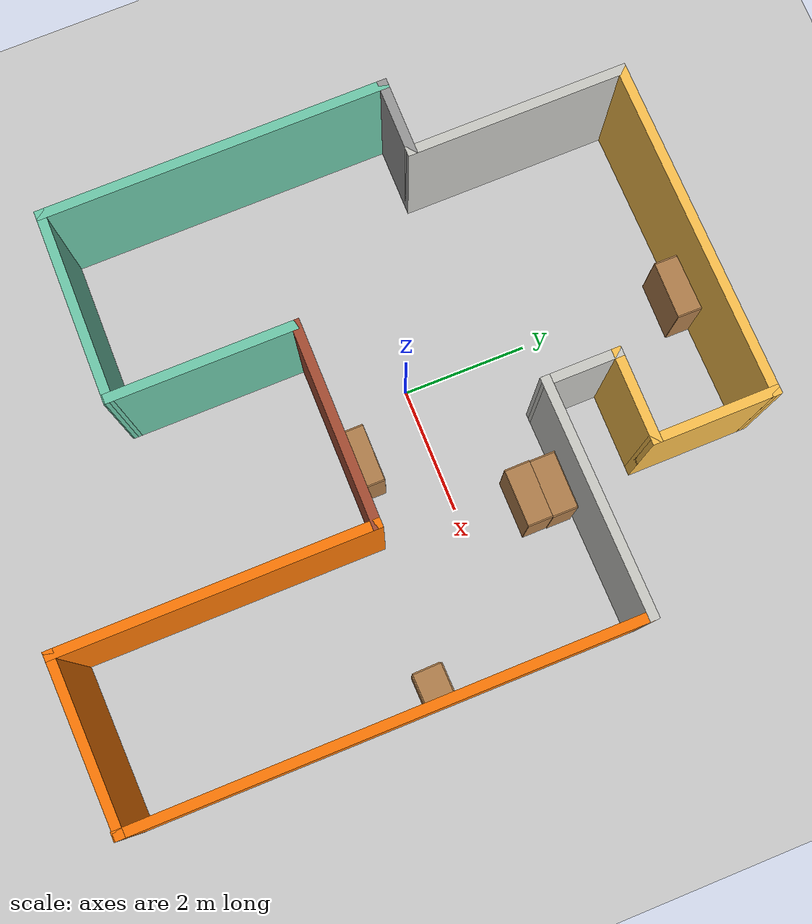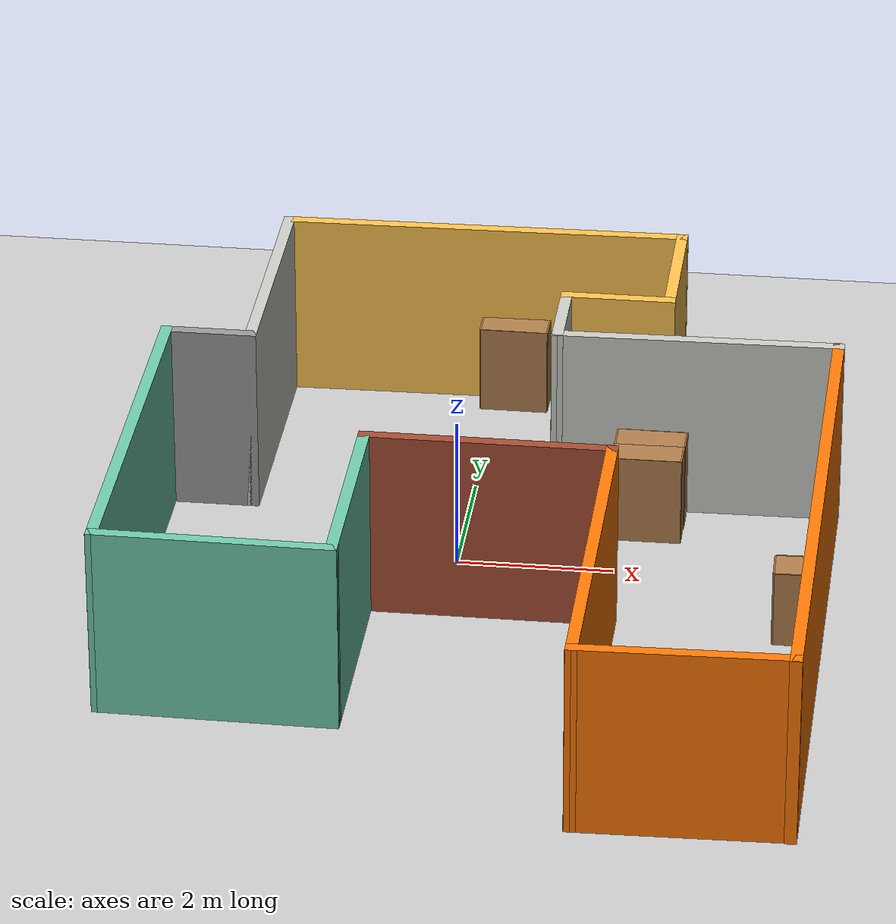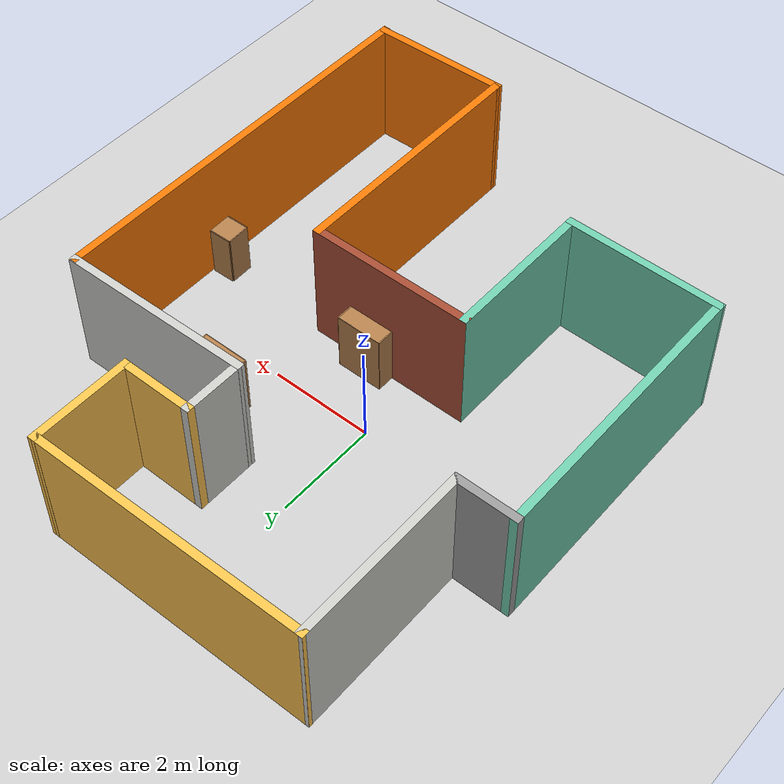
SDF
<sdf version="1.6">
 <world name="default">
  <model name="ground_plane">
   <static>1</static>
   <link name="link">
    <collision name="collision">
     <geometry><plane><normal>0 0 1</normal><size>100 100</size></plane></geometry>
     <surface>
      <contact><collide_bitmask>65535</collide_bitmask></contact>
      <friction><ode><mu>100</mu><mu2>50</mu2></ode></friction>
     </surface>
    </collision>
    <visual name="visual">
     <cast_shadows>0</cast_shadows>
     <geometry><plane><normal>0 0 1</normal><size>100 100</size></plane></geometry>
     <material>
      <script><uri>file://media/materials/scripts/gazebo.material</uri><name>Gazebo/Grey</name></script>
     </material>
    </visual>
   </link>
  </model>
  <model name="easy">
   <pose>0.391271 -0.746153 0 0 -0 0</pose>
   <link name="Wall_1">
    <collision name="Wall_1_Collision">
     <geometry><box><size>5.5 0.15 2.5</size></box></geometry>
     <pose>0 0 1.25 0 -0 0</pose>
    </collision>
    <visual name="Wall_1_Visual">
     <pose>0 0 1.25 0 -0 0</pose>
     <geometry><box><size>5.5 0.15 2.5</size></box></geometry>
     <material>
      <script><uri>file://media/materials/scripts/gazebo.material</uri><name>Gazebo/Grey</name></script>
      <ambient>0.435294 0.796078 0.67451 1</ambient>
     </material>
     <meta><layer>0</layer></meta>
    </visual>
    <pose>-4.31567 -0.707217 0 0 0 -1.5708</pose>
   </link>
   <link name="Wall_10">
    <collision name="Wall_10_Collision">
     <geometry><box><size>3.76202 0.15 2.5</size></box></geometry>
     <pose>0 0 1.25 0 -0 0</pose>
    </collision>
    <visual name="Wall_10_Visual">
     <pose>0 0 1.25 0 -0 0</pose>
     <geometry><box><size>3.76202 0.15 2.5</size></box></geometry>
     <material>
      <script><uri>file://media/materials/scripts/gazebo.material</uri><name>Gazebo/CeilingTiled</name></script>
      <ambient>1 1 1 1</ambient>
     </material>
     <meta><layer>0</layer></meta>
    </visual>
    <pose>2.50896 2.48114 0 0 0 -3.12451</pose>
   </link>
   <link name="Wall_11">
    <collision name="Wall_11_Collision">
     <geometry><box><size>1.25 0.15 2.5</size></box></geometry>
     <pose>0 0 1.25 0 -0 0</pose>
    </collision>
    <visual name="Wall_11_Visual">
     <pose>0 0 1.25 0 -0 0</pose>
     <geometry><box><size>1.25 0.15 2.5</size></box></geometry>
     <material>
      <script><uri>file://media/materials/scripts/gazebo.material</uri><name>Gazebo/CeilingTiled</name></script>
      <ambient>1 1 1 1</ambient>
     </material>
     <meta><layer>0</layer></meta>
    </visual>
    <pose>0.703214 3.00029 0 0 -0 1.5708</pose>
   </link>
   <link name="Wall_12">
    <collision name="Wall_12_Collision">
     <geometry><box><size>1.5 0.15 2.5</size></box></geometry>
     <pose>0 0 1.25 0 -0 0</pose>
    </collision>
    <visual name="Wall_12_Visual">
     <pose>0 0 1.25 0 -0 0</pose>
     <geometry><box><size>1.5 0.15 2.5</size></box></geometry>
     <material>
      <script><uri>file://media/materials/scripts/gazebo.material</uri><name>Gazebo/Grey</name></script>
      <ambient>1 0.764706 0.305882 1</ambient>
     </material>
     <meta><layer>0</layer></meta>
    </visual>
    <pose>1.37821 3.55029 0 0 -0 0</pose>
   </link>
   <link name="Wall_13">
    <collision name="Wall_13_Collision">
     <geometry><box><size>2 0.15 2.5</size></box></geometry>
     <pose>0 0 1.25 0 -0 0</pose>
    </collision>
    <visual name="Wall_13_Visual">
     <pose>0 0 1.25 0 -0 0</pose>
     <geometry><box><size>2 0.15 2.5</size></box></geometry>
     <material>
      <script><uri>file://media/materials/scripts/gazebo.material</uri><name>Gazebo/Grey</name></script>
      <ambient>1 0.764706 0.305882 1</ambient>
     </material>
     <meta><layer>0</layer></meta>
    </visual>
    <pose>2.05321 4.47529 0 0 -0 1.5708</pose>
   </link>
   <link name="Wall_19">
    <collision name="Wall_19_Collision">
     <geometry><box><size>1.25 0.15 2.5</size></box></geometry>
     <pose>0 0 1.25 0 -0 0</pose>
    </collision>
    <visual name="Wall_19_Visual">
     <pose>0 0 1.25 0 -0 0</pose>
     <geometry><box><size>1.25 0.15 2.5</size></box></geometry>
     <material>
      <script><uri>file://media/materials/scripts/gazebo.material</uri><name>Gazebo/Grey</name></script>
      <ambient>1 1 1 1</ambient>
     </material>
     <meta><layer>0</layer></meta>
    </visual>
    <pose>-3.76567 1.96778 0 0 -0 0</pose>
   </link>
   <link name="Wall_2">
    <collision name="Wall_2_Collision">
     <geometry><box><size>3.06888 0.15 2.5</size></box></geometry>
     <pose>0 0 1.25 0 -0 0</pose>
    </collision>
    <visual name="Wall_2_Visual">
     <pose>0 0 1.25 0 -0 0</pose>
     <geometry><box><size>3.06888 0.15 2.5</size></box></geometry>
     <material>
      <script><uri>file://media/materials/scripts/gazebo.material</uri><name>Gazebo/Grey</name></script>
      <ambient>0.435294 0.796078 0.67451 1</ambient>
     </material>
     <meta><layer>0</layer></meta>
    </visual>
    <pose>-2.85623 -3.39971 0 0 0 -0.011984</pose>
   </link>
   <link name="Wall_20">
    <collision name="Wall_20_Collision">
     <geometry><box><size>3.5 0.15 2.5</size></box></geometry>
     <pose>0 0 1.25 0 -0 0</pose>
    </collision>
    <visual name="Wall_20_Visual">
     <pose>0 0 1.25 0 -0 0</pose>
     <geometry><box><size>3.5 0.15 2.5</size></box></geometry>
     <material>
      <script><uri>file://media/materials/scripts/gazebo.material</uri><name>Gazebo/CeilingTiled</name></script>
      <ambient>1 1 1 1</ambient>
     </material>
     <meta><layer>0</layer></meta>
    </visual>
    <pose>-3.21567 3.64278 0 0 -0 1.5708</pose>
   </link>
   <link name="Wall_21">
    <collision name="Wall_21_Collision">
     <geometry><box><size>5.41953 0.15 2.5</size></box></geometry>
     <pose>0 0 1.25 0 -0 0</pose>
    </collision>
    <visual name="Wall_21_Visual">
     <pose>0 0 1.25 0 -0 0</pose>
     <geometry><box><size>5.41953 0.15 2.5</size></box></geometry>
     <material>
      <script><uri>file://media/materials/scripts/gazebo.material</uri><name>Gazebo/Grey</name></script>
      <ambient>1 0.764706 0.305882 1</ambient>
     </material>
     <meta><layer>0</layer></meta>
    </visual>
    <pose>-0.581227 5.35904 0 0 -0 0.015659</pose>
   </link>
   <link name="Wall_3">
    <collision name="Wall_3_Collision">
     <geometry><box><size>3 0.15 2.5</size></box></geometry>
     <pose>0 0 1.25 0 -0 0</pose>
    </collision>
    <visual name="Wall_3_Visual">
     <pose>0 0 1.25 0 -0 0</pose>
     <geometry><box><size>3 0.15 2.5</size></box></geometry>
     <material>
      <script><uri>file://media/materials/scripts/gazebo.material</uri><name>Gazebo/Grey</name></script>
      <ambient>0.435294 0.796078 0.67451 1</ambient>
     </material>
     <meta><layer>0</layer></meta>
    </visual>
    <pose>-1.39679 -1.97471 0 0 -0 1.5708</pose>
   </link>
   <link name="Wall_6">
    <collision name="Wall_6_Collision">
     <geometry><box><size>3.25 0.15 2.5</size></box></geometry>
     <pose>0 0 1.25 0 -0 0</pose>
    </collision>
    <visual name="Wall_6_Visual">
     <pose>0 0 1.25 0 -0 0</pose>
     <geometry><box><size>3.25 0.15 2.5</size></box></geometry>
     <material>
      <script><uri>file://media/materials/scripts/gazebo.material</uri><name>Gazebo/Bricks</name></script>
      <ambient>1 1 1 1</ambient>
     </material>
     <meta><layer>0</layer></meta>
    </visual>
    <pose>0.153214 -0.549707 0 0 -0 0</pose>
   </link>
   <link name="Wall_7">
    <collision name="Wall_7_Collision">
     <geometry><box><size>5 0.15 2.5</size></box></geometry>
     <pose>0 0 1.25 0 -0 0</pose>
    </collision>
    <visual name="Wall_7_Visual">
     <pose>0 0 1.25 0 -0 0</pose>
     <geometry><box><size>5 0.15 2.5</size></box></geometry>
     <material>
      <script><uri>file://media/materials/scripts/gazebo.material</uri><name>Gazebo/Grey</name></script>
      <ambient>0.996078 0.47451 0.0196078 1</ambient>
     </material>
     <meta><layer>0</layer></meta>
    </visual>
    <pose>1.70321 -2.97471 0 0 0 -1.5708</pose>
   </link>
   <link name="Wall_8">
    <collision name="Wall_8_Collision">
     <geometry><box><size>2.76222 0.15 2.5</size></box></geometry>
     <pose>0 0 1.25 0 -0 0</pose>
    </collision>
    <visual name="Wall_8_Visual">
     <pose>0 0 1.25 0 -0 0</pose>
     <geometry><box><size>2.76222 0.15 2.5</size></box></geometry>
     <material>
      <script><uri>file://media/materials/scripts/gazebo.material</uri><name>Gazebo/Grey</name></script>
      <ambient>0.996078 0.47451 0.0196078 1</ambient>
     </material>
     <meta><layer>0</layer></meta>
    </visual>
    <pose>3.00896 -5.36886 0 0 -0 0.023623</pose>
   </link>
   <link name="Wall_9">
    <collision name="Wall_9_Collision">
     <geometry><box><size>8 0.15 2.5</size></box></geometry>
     <pose>0 0 1.25 0 -0 0</pose>
    </collision>
    <visual name="Wall_9_Visual">
     <pose>0 0 1.25 0 -0 0</pose>
     <geometry><box><size>8 0.15 2.5</size></box></geometry>
     <material>
      <script><uri>file://media/materials/scripts/gazebo.material</uri><name>Gazebo/Grey</name></script>
      <ambient>0.996078 0.47451 0.0196078 1</ambient>
     </material>
     <meta><layer>0</layer></meta>
    </visual>
    <pose>4.31471 -1.4283 0 0 -0 1.5708</pose>
   </link>
   <static>1</static>
  </model>
  <model name="bookshelf">
   <static>1</static>
   <link name="link">
    <inertial><mass>1</mass></inertial>
    <collision name="back">
     <pose>0 0.005 0.6 0 -0 0</pose>
     <geometry><box><size>0.9 0.01 1.2</size></box></geometry>
    </collision>
    <visual name="visual1">
     <pose>0 0.005 0.6 0 -0 0</pose>
     <geometry><box><size>0.9 0.01 1.2</size></box></geometry>
     <material>
      <script><uri>file://media/materials/scripts/gazebo.material</uri><name>Gazebo/Wood</name></script>
     </material>
    </visual>
    <collision name="left_side">
     <pose>0.45 -0.195 0.6 0 -0 0</pose>
     <geometry><box><size>0.02 0.4 1.2</size></box></geometry>
    </collision>
    <visual name="visual2">
     <pose>0.45 -0.195 0.6 0 -0 0</pose>
     <geometry><box><size>0.02 0.4 1.2</size></box></geometry>
     <material>
      <script><uri>file://media/materials/scripts/gazebo.material</uri><name>Gazebo/Wood</name></script>
     </material>
    </visual>
    <collision name="right_side">
     <pose>-0.45 -0.195 0.6 0 -0 0</pose>
     <geometry><box><size>0.02 0.4 1.2</size></box></geometry>
    </collision>
    <visual name="visual3">
     <pose>-0.45 -0.195 0.6 0 -0 0</pose>
     <geometry><box><size>0.02 0.4 1.2</size></box></geometry>
     <material>
      <script><uri>file://media/materials/scripts/gazebo.material</uri><name>Gazebo/Wood</name></script>
     </material>
    </visual>
    <collision name="bottom">
     <pose>0 -0.195 0.03 0 -0 0</pose>
     <geometry><box><size>0.88 0.4 0.06</size></box></geometry>
    </collision>
    <visual name="visual4">
     <pose>0 -0.195 0.03 0 -0 0</pose>
     <geometry><box><size>0.88 0.4 0.06</size></box></geometry>
     <material>
      <script><uri>file://media/materials/scripts/gazebo.material</uri><name>Gazebo/Wood</name></script>
     </material>
    </visual>
    <collision name="top">
     <pose>0 -0.195 1.19 0 -0 0</pose>
     <geometry><box><size>0.88 0.4 0.02</size></box></geometry>
    </collision>
    <visual name="visual5">
     <pose>0 -0.195 1.19 0 -0 0</pose>
     <geometry><box><size>0.88 0.4 0.02</size></box></geometry>
     <material>
      <script><uri>file://media/materials/scripts/gazebo.material</uri><name>Gazebo/Wood</name></script>
     </material>
    </visual>
    <collision name="low_shelf">
     <pose>0 -0.195 0.43 0 -0 0</pose>
     <geometry><box><size>0.88 0.4 0.02</size></box></geometry>
    </collision>
    <visual name="visual6">
     <pose>0 -0.195 0.43 0 -0 0</pose>
     <geometry><box><size>0.88 0.4 0.02</size></box></geometry>
     <material>
      <script><uri>file://media/materials/scripts/gazebo.material</uri><name>Gazebo/Wood</name></script>
     </material>
    </visual>
    <collision name="high_shelf">
     <pose>0 -0.195 0.8 0 -0 0</pose>
     <geometry><box><size>0.88 0.4 0.02</size></box></geometry>
    </collision>
    <visual name="visual7">
     <pose>0 -0.195 0.8 0 -0 0</pose>
     <geometry><box><size>0.88 0.4 0.02</size></box></geometry>
     <material>
      <script><uri>file://media/materials/scripts/gazebo.material</uri><name>Gazebo/Wood</name></script>
     </material>
    </visual>
   </link>
   <pose>0.245958 4.17344 0 0 -0 3.13529</pose>
  </model>
  <model name="bookshelf_0">
   <static>1</static>
   <link name="link">
    <inertial><mass>1</mass></inertial>
    <collision name="back">
     <pose>0 0.005 0.6 0 -0 0</pose>
     <geometry><box><size>0.9 0.01 1.2</size></box></geometry>
    </collision>
    <visual name="visual1">
     <pose>0 0.005 0.6 0 -0 0</pose>
     <geometry><box><size>0.9 0.01 1.2</size></box></geometry>
     <material>
      <script><uri>file://media/materials/scripts/gazebo.material</uri><name>Gazebo/Wood</name></script>
     </material>
    </visual>
    <collision name="left_side">
     <pose>0.45 -0.195 0.6 0 -0 0</pose>
     <geometry><box><size>0.02 0.4 1.2</size></box></geometry>
    </collision>
    <visual name="visual2">
     <pose>0.45 -0.195 0.6 0 -0 0</pose>
     <geometry><box><size>0.02 0.4 1.2</size></box></geometry>
     <material>
      <script><uri>file://media/materials/scripts/gazebo.material</uri><name>Gazebo/Wood</name></script>
     </material>
    </visual>
    <collision name="right_side">
     <pose>-0.45 -0.195 0.6 0 -0 0</pose>
     <geometry><box><size>0.02 0.4 1.2</size></box></geometry>
    </collision>
    <visual name="visual3">
     <pose>-0.45 -0.195 0.6 0 -0 0</pose>
     <geometry><box><size>0.02 0.4 1.2</size></box></geometry>
     <material>
      <script><uri>file://media/materials/scripts/gazebo.material</uri><name>Gazebo/Wood</name></script>
     </material>
    </visual>
    <collision name="bottom">
     <pose>0 -0.195 0.03 0 -0 0</pose>
     <geometry><box><size>0.88 0.4 0.06</size></box></geometry>
    </collision>
    <visual name="visual4">
     <pose>0 -0.195 0.03 0 -0 0</pose>
     <geometry><box><size>0.88 0.4 0.06</size></box></geometry>
     <material>
      <script><uri>file://media/materials/scripts/gazebo.material</uri><name>Gazebo/Wood</name></script>
     </material>
    </visual>
    <collision name="top">
     <pose>0 -0.195 1.19 0 -0 0</pose>
     <geometry><box><size>0.88 0.4 0.02</size></box></geometry>
    </collision>
    <visual name="visual5">
     <pose>0 -0.195 1.19 0 -0 0</pose>
     <geometry><box><size>0.88 0.4 0.02</size></box></geometry>
     <material>
      <script><uri>file://media/materials/scripts/gazebo.material</uri><name>Gazebo/Wood</name></script>
     </material>
    </visual>
    <collision name="low_shelf">
     <pose>0 -0.195 0.43 0 -0 0</pose>
     <geometry><box><size>0.88 0.4 0.02</size></box></geometry>
    </collision>
    <visual name="visual6">
     <pose>0 -0.195 0.43 0 -0 0</pose>
     <geometry><box><size>0.88 0.4 0.02</size></box></geometry>
     <material>
      <script><uri>file://media/materials/scripts/gazebo.material</uri><name>Gazebo/Wood</name></script>
     </material>
    </visual>
    <collision name="high_shelf">
     <pose>0 -0.195 0.8 0 -0 0</pose>
     <geometry><box><size>0.88 0.4 0.02</size></box></geometry>
    </collision>
    <visual name="visual7">
     <pose>0 -0.195 0.8 0 -0 0</pose>
     <geometry><box><size>0.88 0.4 0.02</size></box></geometry>
     <material>
      <script><uri>file://media/materials/scripts/gazebo.material</uri><name>Gazebo/Wood</name></script>
     </material>
    </visual>
   </link>
   <pose>0.898312 -0.891576 0 0 -0 0</pose>
  </model>
  <model name="bookshelf_1">
   <static>1</static>
   <link name="link">
    <inertial><mass>1</mass></inertial>
    <collision name="back">
     <pose>0 0.005 0.6 0 -0 0</pose>
     <geometry><box><size>0.9 0.01 1.2</size></box></geometry>
    </collision>
    <visual name="visual1">
     <pose>0 0.005 0.6 0 -0 0</pose>
     <geometry><box><size>0.9 0.01 1.2</size></box></geometry>
     <material>
      <script><uri>file://media/materials/scripts/gazebo.material</uri><name>Gazebo/Wood</name></script>
     </material>
    </visual>
    <collision name="left_side">
     <pose>0.45 -0.195 0.6 0 -0 0</pose>
     <geometry><box><size>0.02 0.4 1.2</size></box></geometry>
    </collision>
    <visual name="visual2">
     <pose>0.45 -0.195 0.6 0 -0 0</pose>
     <geometry><box><size>0.02 0.4 1.2</size></box></geometry>
     <material>
      <script><uri>file://media/materials/scripts/gazebo.material</uri><name>Gazebo/Wood</name></script>
     </material>
    </visual>
    <collision name="right_side">
     <pose>-0.45 -0.195 0.6 0 -0 0</pose>
     <geometry><box><size>0.02 0.4 1.2</size></box></geometry>
    </collision>
    <visual name="visual3">
     <pose>-0.45 -0.195 0.6 0 -0 0</pose>
     <geometry><box><size>0.02 0.4 1.2</size></box></geometry>
     <material>
      <script><uri>file://media/materials/scripts/gazebo.material</uri><name>Gazebo/Wood</name></script>
     </material>
    </visual>
    <collision name="bottom">
     <pose>0 -0.195 0.03 0 -0 0</pose>
     <geometry><box><size>0.88 0.4 0.06</size></box></geometry>
    </collision>
    <visual name="visual4">
     <pose>0 -0.195 0.03 0 -0 0</pose>
     <geometry><box><size>0.88 0.4 0.06</size></box></geometry>
     <material>
      <script><uri>file://media/materials/scripts/gazebo.material</uri><name>Gazebo/Wood</name></script>
     </material>
    </visual>
    <collision name="top">
     <pose>0 -0.195 1.19 0 -0 0</pose>
     <geometry><box><size>0.88 0.4 0.02</size></box></geometry>
    </collision>
    <visual name="visual5">
     <pose>0 -0.195 1.19 0 -0 0</pose>
     <geometry><box><size>0.88 0.4 0.02</size></box></geometry>
     <material>
      <script><uri>file://media/materials/scripts/gazebo.material</uri><name>Gazebo/Wood</name></script>
     </material>
    </visual>
    <collision name="low_shelf">
     <pose>0 -0.195 0.43 0 -0 0</pose>
     <geometry><box><size>0.88 0.4 0.02</size></box></geometry>
    </collision>
    <visual name="visual6">
     <pose>0 -0.195 0.43 0 -0 0</pose>
     <geometry><box><size>0.88 0.4 0.02</size></box></geometry>
     <material>
      <script><uri>file://media/materials/scripts/gazebo.material</uri><name>Gazebo/Wood</name></script>
     </material>
    </visual>
    <collision name="high_shelf">
     <pose>0 -0.195 0.8 0 -0 0</pose>
     <geometry><box><size>0.88 0.4 0.02</size></box></geometry>
    </collision>
    <visual name="visual7">
     <pose>0 -0.195 0.8 0 -0 0</pose>
     <geometry><box><size>0.88 0.4 0.02</size></box></geometry>
     <material>
      <script><uri>file://media/materials/scripts/gazebo.material</uri><name>Gazebo/Wood</name></script>
     </material>
    </visual>
   </link>
   <pose>2.34946 1.60551 0 0 -0 0</pose>
  </model>
  <model name="bookshelf_2">
   <static>1</static>
   <link name="link">
    <inertial><mass>1</mass></inertial>
    <collision name="back">
     <pose>0 0.005 0.6 0 -0 0</pose>
     <geometry><box><size>0.9 0.01 1.2</size></box></geometry>
    </collision>
    <visual name="visual1">
     <pose>0 0.005 0.6 0 -0 0</pose>
     <geometry><box><size>0.9 0.01 1.2</size></box></geometry>
     <material>
      <script><uri>file://media/materials/scripts/gazebo.material</uri><name>Gazebo/Wood</name></script>
     </material>
    </visual>
    <collision name="left_side">
     <pose>0.45 -0.195 0.6 0 -0 0</pose>
     <geometry><box><size>0.02 0.4 1.2</size></box></geometry>
    </collision>
    <visual name="visual2">
     <pose>0.45 -0.195 0.6 0 -0 0</pose>
     <geometry><box><size>0.02 0.4 1.2</size></box></geometry>
     <material>
      <script><uri>file://media/materials/scripts/gazebo.material</uri><name>Gazebo/Wood</name></script>
     </material>
    </visual>
    <collision name="right_side">
     <pose>-0.45 -0.195 0.6 0 -0 0</pose>
     <geometry><box><size>0.02 0.4 1.2</size></box></geometry>
    </collision>
    <visual name="visual3">
     <pose>-0.45 -0.195 0.6 0 -0 0</pose>
     <geometry><box><size>0.02 0.4 1.2</size></box></geometry>
     <material>
      <script><uri>file://media/materials/scripts/gazebo.material</uri><name>Gazebo/Wood</name></script>
     </material>
    </visual>
    <collision name="bottom">
     <pose>0 -0.195 0.03 0 -0 0</pose>
     <geometry><box><size>0.88 0.4 0.06</size></box></geometry>
    </collision>
    <visual name="visual4">
     <pose>0 -0.195 0.03 0 -0 0</pose>
     <geometry><box><size>0.88 0.4 0.06</size></box></geometry>
     <material>
      <script><uri>file://media/materials/scripts/gazebo.material</uri><name>Gazebo/Wood</name></script>
     </material>
    </visual>
    <collision name="top">
     <pose>0 -0.195 1.19 0 -0 0</pose>
     <geometry><box><size>0.88 0.4 0.02</size></box></geometry>
    </collision>
    <visual name="visual5">
     <pose>0 -0.195 1.19 0 -0 0</pose>
     <geometry><box><size>0.88 0.4 0.02</size></box></geometry>
     <material>
      <script><uri>file://media/materials/scripts/gazebo.material</uri><name>Gazebo/Wood</name></script>
     </material>
    </visual>
    <collision name="low_shelf">
     <pose>0 -0.195 0.43 0 -0 0</pose>
     <geometry><box><size>0.88 0.4 0.02</size></box></geometry>
    </collision>
    <visual name="visual6">
     <pose>0 -0.195 0.43 0 -0 0</pose>
     <geometry><box><size>0.88 0.4 0.02</size></box></geometry>
     <material>
      <script><uri>file://media/materials/scripts/gazebo.material</uri><name>Gazebo/Wood</name></script>
     </material>
    </visual>
    <collision name="high_shelf">
     <pose>0 -0.195 0.8 0 -0 0</pose>
     <geometry><box><size>0.88 0.4 0.02</size></box></geometry>
    </collision>
    <visual name="visual7">
     <pose>0 -0.195 0.8 0 -0 0</pose>
     <geometry><box><size>0.88 0.4 0.02</size></box></geometry>
     <material>
      <script><uri>file://media/materials/scripts/gazebo.material</uri><name>Gazebo/Wood</name></script>
     </material>
    </visual>
   </link>
   <pose>2.3416 0.820155 0 0 0 -3.13682</pose>
  </model>
  <model name="cabinet">
   <static>1</static>
   <link name="cabinet_bottom_plate">
    <inertial>
     <pose>0 0 -1 0 -0 0</pose>
     <inertia><ixx>2.05</ixx><ixy>0</ixy><ixz>0</ixz><iyy>2.05</iyy><iyz>0</iyz><izz>2.05</izz></inertia>
     <mass>25</mass>
    </inertial>
    <collision name="cabinet_bottom_plate_geom">
     <pose>0 0 0.01 0 -0 0</pose>
     <geometry><box><size>0.45 0.45 0.02</size></box></geometry>
    </collision>
    <visual name="cabinet_bottom_plate_geom_visual">
     <pose>0 0 0.01 0 -0 0</pose>
     <geometry><box><size>0.45 0.45 0.02</size></box></geometry>
     <material>
      <script><uri>file://media/materials/scripts/gazebo.material</uri><name>Gazebo/Wood</name></script>
     </material>
    </visual>
    <collision name="cabinet_bottom_plate_geom_cabinet_back_plate">
     <pose>0.235 0 0.51 0 -0 0</pose>
     <geometry><box><size>0.02 0.45 1.02</size></box></geometry>
    </collision>
    <visual name="cabinet_bottom_plate_geom_cabinet_back_plate_visual">
     <pose>0.235 0 0.51 0 -0 0</pose>
     <geometry><box><size>0.02 0.45 1.02</size></box></geometry>
     <material>
      <script><uri>file://media/materials/scripts/gazebo.material</uri><name>Gazebo/Wood</name></script>
     </material>
    </visual>
    <collision name="cabinet_bottom_plate_geom_cabinet_left_plate">
     <pose>0 0.235 0.51 0 -0 0</pose>
     <geometry><box><size>0.45 0.02 1.02</size></box></geometry>
    </collision>
    <visual name="cabinet_bottom_plate_geom_cabinet_left_plate_visual">
     <pose>0 0.235 0.51 0 -0 0</pose>
     <geometry><box><size>0.45 0.02 1.02</size></box></geometry>
     <material>
      <script><uri>file://media/materials/scripts/gazebo.material</uri><name>Gazebo/Wood</name></script>
     </material>
    </visual>
    <collision name="cabinet_bottom_plate_geom_cabinet_middle_plate">
     <pose>0 0 0.51 0 -0 0</pose>
     <geometry><box><size>0.45 0.45 0.02</size></box></geometry>
    </collision>
    <visual name="cabinet_bottom_plate_geom_cabinet_middle_plate_visual">
     <pose>0 0 0.51 0 -0 0</pose>
     <geometry><box><size>0.45 0.45 0.02</size></box></geometry>
     <material>
      <script><uri>file://media/materials/scripts/gazebo.material</uri><name>Gazebo/Wood</name></script>
     </material>
    </visual>
    <collision name="cabinet_bottom_plate_geom_cabinet_right_plate">
     <pose>0 -0.235 0.51 0 -0 0</pose>
     <geometry><box><size>0.45 0.02 1.02</size></box></geometry>
    </collision>
    <visual name="cabinet_bottom_plate_geom_cabinet_right_plate_visual">
     <pose>0 -0.235 0.51 0 -0 0</pose>
     <geometry><box><size>0.45 0.02 1.02</size></box></geometry>
     <material>
      <script><uri>file://media/materials/scripts/gazebo.material</uri><name>Gazebo/Wood</name></script>
     </material>
    </visual>
    <collision name="cabinet_bottom_plate_geom_cabinet_top_plate">
     <pose>0 0 1.01 0 -0 0</pose>
     <geometry><box><size>0.45 0.45 0.02</size></box></geometry>
    </collision>
    <visual name="cabinet_bottom_plate_geom_cabinet_top_plate_visual">
     <pose>0 0 1.01 0 -0 0</pose>
     <geometry><box><size>0.45 0.45 0.02</size></box></geometry>
     <material>
      <script><uri>file://media/materials/scripts/gazebo.material</uri><name>Gazebo/Wood</name></script>
     </material>
    </visual>
   </link>
   <pose>4.38233 -1.35348 0 0 0 -3.1186</pose>
  </model>
 </world>
</sdf>
